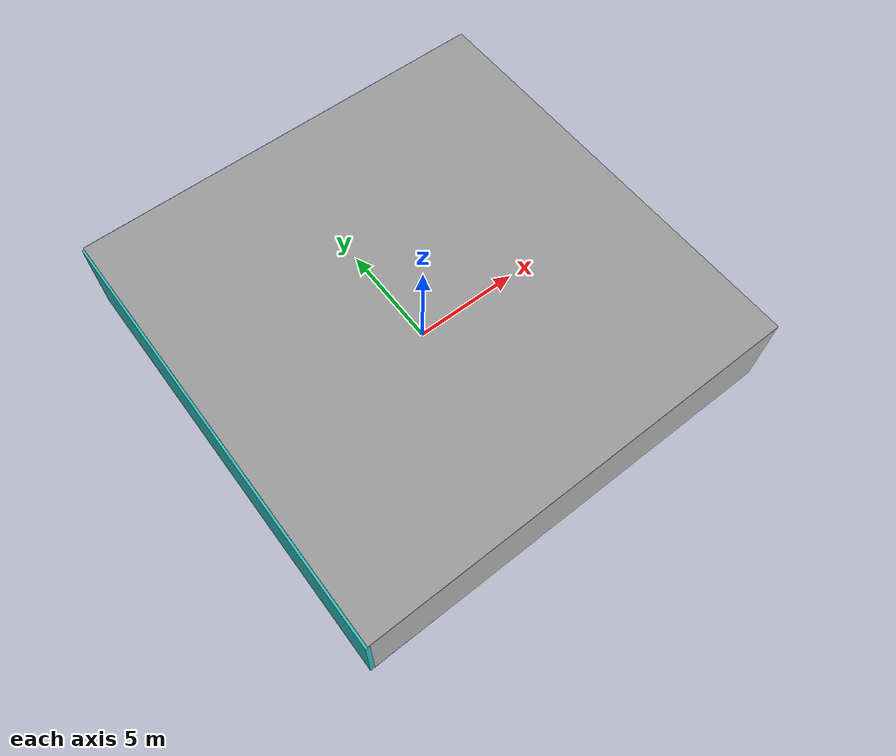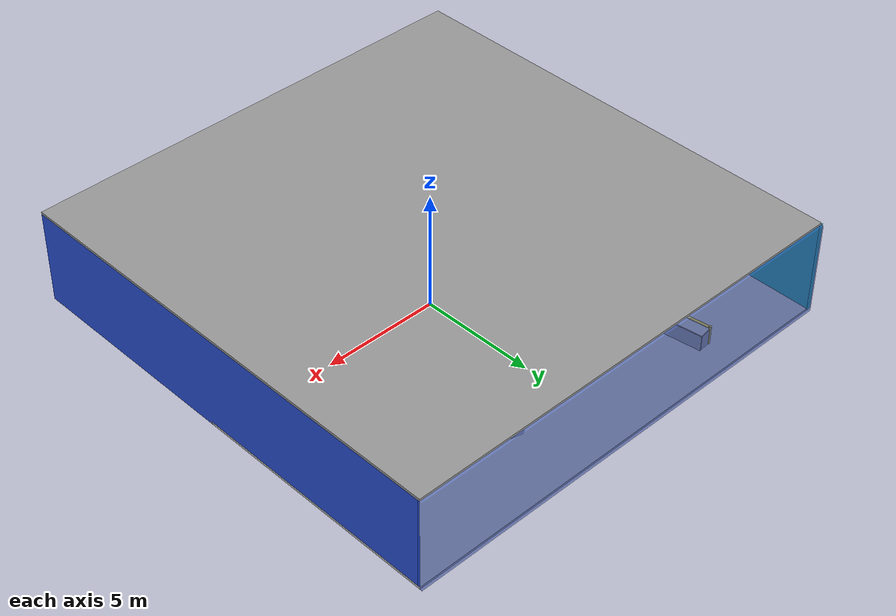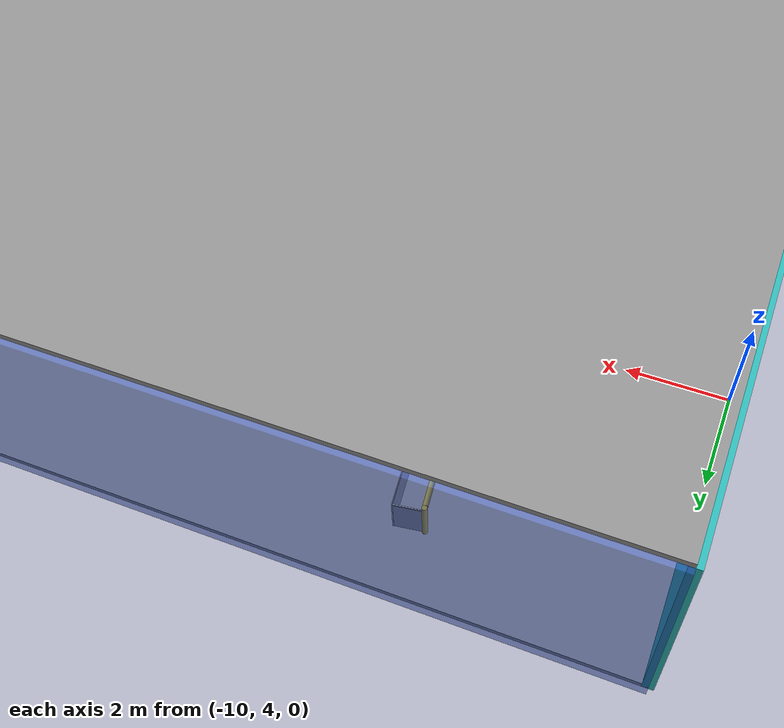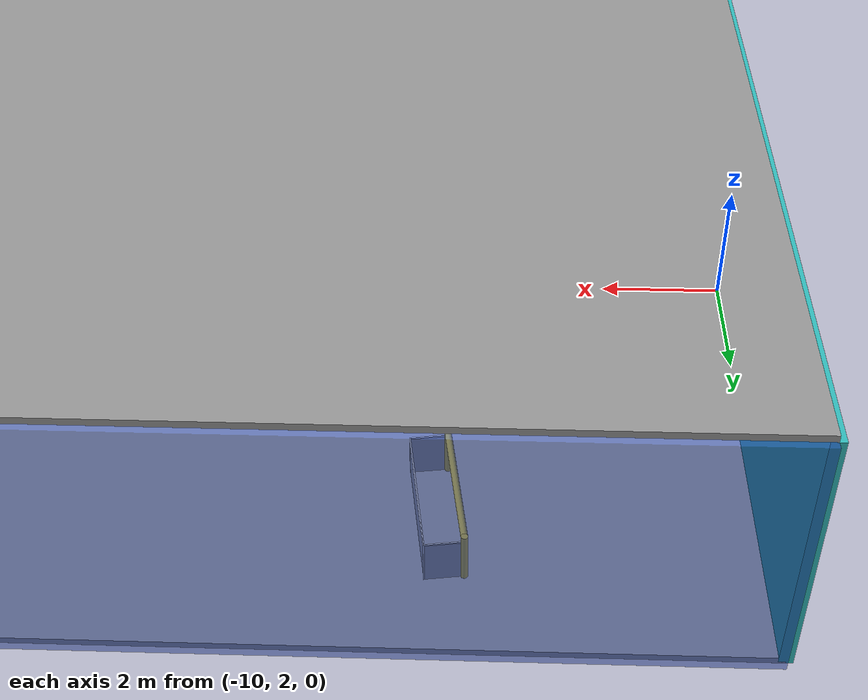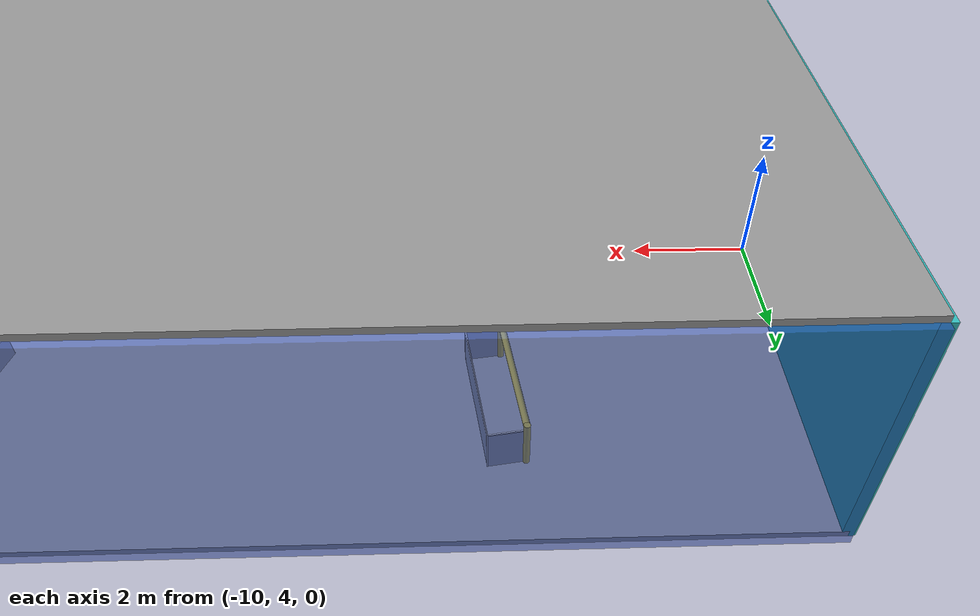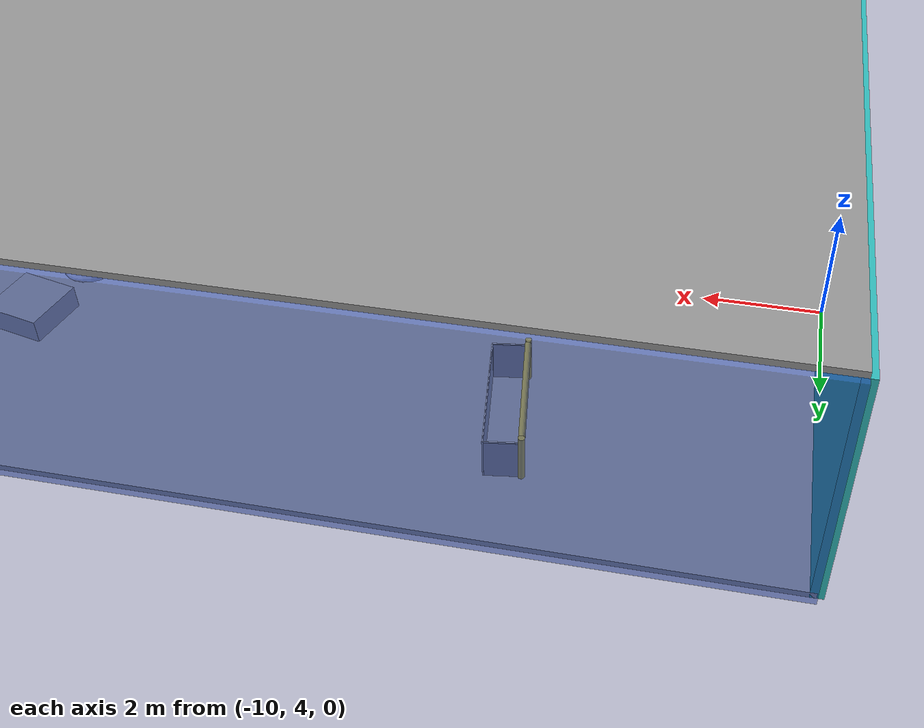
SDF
<sdf version="1.4">
 <world name="default">
  <physics type="ode">
   <max_step_size>0.001</max_step_size>
   <real_time_factor>1</real_time_factor>
   <real_time_update_rate>1000</real_time_update_rate>
   <gravity>0 0 -9.8</gravity>
  </physics>
  <scene><ambient>0.4 0.4 0.4 1</ambient><background>0.7 0.7 0.7 1</background><shadows>1</shadows></scene>
  <model name="Surrounding">
   <static>1</static>
   <link name="Ceiling">
    <collision name="Ceiling_Collision"><geometry><box><size>20 20 0.1</size></box></geometry></collision>
    <visual name="Ceiling_Visual">
     <geometry><box><size>20 20 0.1</size></box></geometry>
     <material>
      <script><uri>file://media/materials/scripts/gazebo.material</uri><name>Gazebo/Grey</name></script>
     </material>
    </visual>
    <pose>0 0 4.05 0 0 0</pose>
   </link>
   <link name="Wall_South">
    <collision name="Wall_South_Collision">
     <geometry><box><size>20 0 4</size></box></geometry>
     <pose>0 0 2 0 -0 0</pose>
    </collision>
    <visual name="Wall_South_Visual">
     <pose>0 0 2 0 -0 0</pose>
     <geometry><box><size>20 0 4</size></box></geometry>
     <material>
      <script><uri>file://media/materials/scripts/gazebo.material</uri><name>Gazebo/JointAnchor</name></script>
     </material>
    </visual>
    <velocity_decay><linear>0</linear><angular>0</angular></velocity_decay>
    <pose>0 -10 0 0 -0 0</pose>
   </link>
   <link name="Wall_East">
    <collision name="Wall_21_Collision">
     <geometry><box><size>20 0 4</size></box></geometry>
     <pose>0 0 2 0 -0 0</pose>
    </collision>
    <visual name="Wall_21_Visual">
     <pose>0 0 2 0 -0 0</pose>
     <geometry><box><size>20 0 4</size></box></geometry>
     <material>
      <script><uri>file://media/materials/scripts/gazebo.material</uri><name>Gazebo/BlueGlow</name></script>
     </material>
    </visual>
    <velocity_decay><linear>0</linear><angular>0</angular></velocity_decay>
    <pose>10 0 0 0 -0 1.5708</pose>
   </link>
   <link name="Wall_North">
    <collision name="Wall_22_Collision">
     <geometry><box><size>20 0.2 4</size></box></geometry>
     <pose>0 0 2 0 -0 0</pose>
    </collision>
    <visual name="Wall_22_Visual">
     <pose>0 0 2 0 -0 0</pose>
     <geometry><box><size>20 0.2 4</size></box></geometry>
     <material>
      <script><uri>file://media/materials/scripts/gazebo.material</uri><name>Gazebo/BlueTransparent</name></script>
     </material>
    </visual>
    <velocity_decay><linear>0</linear><angular>0</angular></velocity_decay>
    <pose>0 10 0 0 -0 0</pose>
   </link>
   <link name="Wall_West">
    <collision name="Wall_23_Collision">
     <geometry><box><size>20 0.2 4</size></box></geometry>
     <pose>0 0 2 0 -0 0</pose>
    </collision>
    <visual name="Wall_23_Visual">
     <pose>0 0 2 0 -0 0</pose>
     <geometry><box><size>20 0.2 4</size></box></geometry>
     <material>
      <script><uri>file://media/materials/scripts/gazebo.material</uri><name>Gazebo/TurquoiseGlow</name></script>
     </material>
    </visual>
    <velocity_decay><linear>0</linear><angular>0</angular></velocity_decay>
    <pose>-10 0 0 0 0 -1.5708</pose>
   </link>
   <link name="Ground_link">
    <collision name="collision">
     <pose>0 0 .05 0 -0 0</pose>
     <geometry><box><size>20 20 0.1</size></box></geometry>
    </collision>
    <visual name="visual">
     <pose>0 0 .05 0 -0 0</pose>
     <geometry><box><size>20 20 0.1</size></box></geometry>
     <material>
      <script><uri>file://media/materials/scripts/gazebo.material</uri><name>Gazebo/LightOn</name></script>
     </material>
    </visual>
   </link>
   <static>1</static>
  </model>
  <spherical_coordinates>
   <surface_model>EARTH_WGS84</surface_model>
   <latitude_deg>0</latitude_deg>
   <longitude_deg>0</longitude_deg>
   <elevation>0</elevation>
   <heading_deg>0</heading_deg>
  </spherical_coordinates>
  <light name="lightball_0" type="diffuse">
   <diffuse>0.8 0.8 0.8 1</diffuse>
   <specular>0.2 0.2 0.2 1</specular>
   <attenuation>
    <range>100</range>
    <constant>0.7</constant>
    <linear>0.01</linear>
    <quadratic>0.001</quadratic>
   </attenuation>
   <direction>-0.5 0.1 -0.9</direction>
   <pose>-4.37841495569 -2.2084837298 2.90234116353 0 0 0</pose>
  </light>
  <light name="lightball_1" type="diffuse">
   <diffuse>0.8 0.8 0.8 1</diffuse>
   <specular>0.2 0.2 0.2 1</specular>
   <attenuation>
    <range>100</range>
    <constant>0.7</constant>
    <linear>0.01</linear>
    <quadratic>0.001</quadratic>
   </attenuation>
   <direction>-0.5 0.1 -0.9</direction>
   <pose>2.8134085988 -0.138546254115 1.37051373223 0 0 0</pose>
  </light>
  <light name="lightball_2" type="diffuse">
   <diffuse>0.8 0.8 0.8 1</diffuse>
   <specular>0.2 0.2 0.2 1</specular>
   <attenuation>
    <range>100</range>
    <constant>0.7</constant>
    <linear>0.01</linear>
    <quadratic>0.001</quadratic>
   </attenuation>
   <direction>-0.5 0.1 -0.9</direction>
   <pose>0.16027631191 4.37631685519 0.68332792497 0 0 0</pose>
  </light>
  <light name="lightball_3" type="diffuse">
   <diffuse>0.8 0.8 0.8 1</diffuse>
   <specular>0.2 0.2 0.2 1</specular>
   <attenuation>
    <range>100</range>
    <constant>0.7</constant>
    <linear>0.01</linear>
    <quadratic>0.001</quadratic>
   </attenuation>
   <direction>-0.5 0.1 -0.9</direction>
   <pose>-5.05366310971 0.598179150548 2.87539992833 0 0 0</pose>
  </light>
  <light name="lightball_4" type="diffuse">
   <diffuse>0.8 0.8 0.8 1</diffuse>
   <specular>0.2 0.2 0.2 1</specular>
   <attenuation>
    <range>100</range>
    <constant>0.7</constant>
    <linear>0.01</linear>
    <quadratic>0.001</quadratic>
   </attenuation>
   <direction>-0.5 0.1 -0.9</direction>
   <pose>-6.12733841431 6.30184453821 1.97399526768 0 0 0</pose>
  </light>
  <light name="lightball_5" type="diffuse">
   <diffuse>0.8 0.8 0.8 1</diffuse>
   <specular>0.2 0.2 0.2 1</specular>
   <attenuation>
    <range>100</range>
    <constant>0.7</constant>
    <linear>0.01</linear>
    <quadratic>0.001</quadratic>
   </attenuation>
   <direction>-0.5 0.1 -0.9</direction>
   <pose>3.73430938468 6.8162633374 3.4812882943 0 0 0</pose>
  </light>
  <light name="lightball_6" type="diffuse">
   <diffuse>0.8 0.8 0.8 1</diffuse>
   <specular>0.2 0.2 0.2 1</specular>
   <attenuation>
    <range>100</range>
    <constant>0.7</constant>
    <linear>0.01</linear>
    <quadratic>0.001</quadratic>
   </attenuation>
   <direction>-0.5 0.1 -0.9</direction>
   <pose>1.41240355809 -1.55719964951 1.26577134417 0 0 0</pose>
  </light>
  <light name="lightball_7" type="diffuse">
   <diffuse>0.8 0.8 0.8 1</diffuse>
   <specular>0.2 0.2 0.2 1</specular>
   <attenuation>
    <range>100</range>
    <constant>0.7</constant>
    <linear>0.01</linear>
    <quadratic>0.001</quadratic>
   </attenuation>
   <direction>-0.5 0.1 -0.9</direction>
   <pose>0.112353662642 3.24405273775 3.42144047588 0 0 0</pose>
  </light>
  <light name="lightball_8" type="diffuse">
   <diffuse>0.8 0.8 0.8 1</diffuse>
   <specular>0.2 0.2 0.2 1</specular>
   <attenuation>
    <range>100</range>
    <constant>0.7</constant>
    <linear>0.01</linear>
    <quadratic>0.001</quadratic>
   </attenuation>
   <direction>-0.5 0.1 -0.9</direction>
   <pose>1.78493836829 4.53837798076 2.58009219122 0 0 0</pose>
  </light>
  <include><uri>model://table</uri><pose>-8.4729654859 -5.59202750017 0 0 0 0.223635875265</pose></include>
  <include><uri>model://table</uri><pose>-8.50082364924 -1.20788861012 0 0 0 1.00952154769</pose></include>
  <include>
   <uri>model://robocup_3Dsim_goal</uri>
   <pose>-5.60276780558 7.68550368346 0 0 0 0.14153147326</pose>
  </include>
  <include><uri>model://table</uri><pose>1.91600640443 -1.03018139038 0 0 0 2.88787649442</pose></include>
  <include><uri>model://table</uri><pose>2.49473634115 0.881832254828 0 0 0 2.13565713995</pose></include>
  <include>
   <uri>model://textured_shapes</uri>
   <pose>2.60257094917 5.30310246931 0 0 0 2.92565733622</pose>
  </include>
  <include><uri>model://cabinet</uri><pose>8.00534586903 -7.83016699394 0 0 0 2.31352316132</pose></include>
  <include>
   <uri>model://construction_cone</uri>
   <pose>7.86975805356 -5.0648309936 0 0 0 0.931716026371</pose>
  </include>
  <include><uri>model://cabinet</uri><pose>7.70400266707 5.55534842805 0 0 0 1.57807123743</pose></include>
 </world>
</sdf>

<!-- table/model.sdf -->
<sdf version="1.5">
  <model name="table">
    <static>true</static>
    <link name="link">
      <collision name="surface">
        <pose>0 0 1.0 0 0 0</pose>
        <geometry>
          <box>
            <size>1.5 0.8 0.03</size>
          </box>
        </geometry>
        <surface>
          <friction>
            <ode>
              <mu>0.6</mu>
              <mu2>0.6</mu2>
            </ode>
          </friction>
        </surface>
      </collision>
      <visual name="visual1">
        <pose>0 0 1.0 0 0 0</pose>
        <geometry>
          <box>
            <size>1.5 0.8 0.03</size>
          </box>
        </geometry>
        <material>
          <script>
            <uri>model://media/materials/scripts/gazebo.material</uri>
            <name>Gazebo/Wood</name>
          </script>
        </material>
      </visual>
      <collision name="front_left_leg">
        <pose>0.68 0.38 0.5 0 0 0</pose>
        <geometry>
          <cylinder>
            <radius>0.02</radius>
            <length>1.0</length>
          </cylinder>
        </geometry>
      </collision>
      <visual name="front_left_leg">
        <pose>0.68 0.38 0.5 0 0 0</pose>
        <geometry>
          <cylinder>
            <radius>0.02</radius>
            <length>1.0</length>
          </cylinder>
        </geometry>
        <material>
          <script>
            <uri>model://media/materials/scripts/gazebo.material</uri>
            <name>Gazebo/Grey</name>
          </script>
        </material>
      </visual>
      <collision name="front_right_leg">
        <pose>0.68 -0.38 0.5 0 0 0</pose>
        <geometry>
          <cylinder>
            <radius>0.02</radius>
            <length>1.0</length>
          </cylinder>
        </geometry>
      </collision>
      <visual name="front_right_leg">
        <pose>0.68 -0.38 0.5 0 0 0</pose>
        <geometry>
          <cylinder>
            <radius>0.02</radius>
            <length>1.0</length>
          </cylinder>
        </geometry>
        <material>
          <script>
            <uri>model://media/materials/scripts/gazebo.material</uri>
            <name>Gazebo/Grey</name>
          </script>
        </material>
      </visual>
      <collision name="back_right_leg">
        <pose>-0.68 -0.38 0.5 0 0 0</pose>
        <geometry>
          <cylinder>
            <radius>0.02</radius>
            <length>1.0</length>
          </cylinder>
        </geometry>
      </collision>
      <visual name="back_right_leg">
        <pose>-0.68 -0.38 0.5 0 0 0</pose>
        <geometry>
          <cylinder>
            <radius>0.02</radius>
            <length>1.0</length>
          </cylinder>
        </geometry>
        <material>
          <script>
            <uri>model://media/materials/scripts/gazebo.material</uri>
            <name>Gazebo/Grey</name>
          </script>
        </material>
      </visual>
      <collision name="back_left_leg">
        <pose>-0.68 0.38 0.5 0 0 0</pose>
        <geometry>
          <cylinder>
            <radius>0.02</radius>
            <length>1.0</length>
          </cylinder>
        </geometry>
      </collision>
      <visual name="back_left_leg">
        <pose>-0.68 0.38 0.5 0 0 0</pose>
        <geometry>
          <cylinder>
            <radius>0.02</radius>
            <length>1.0</length>
          </cylinder>
        </geometry>
        <material>
          <script>
            <uri>model://media/materials/scripts/gazebo.material</uri>
            <name>Gazebo/Grey</name>
          </script>
        </material>
      </visual>
    </link>
  </model>
</sdf>

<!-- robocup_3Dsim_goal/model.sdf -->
<sdf version="1.5">
  <model name="robocup_3d_goal">
    <static>true</static>
    <link name="left_post">
      <pose>0 1.05 0.45 0 0 0</pose>
      <collision name="collision">
        <geometry>
          <cylinder>
            <radius>0.05</radius>
            <length>0.9</length>
          </cylinder>
        </geometry>
      </collision>
      <visual name="visual">
        <geometry>
          <cylinder>
            <radius>0.05</radius>
            <length>0.9</length>
          </cylinder>
        </geometry>
        <material>
          <script>
            <uri>file://media/materials/scripts/gazebo.material</uri>
            <name>Gazebo/ZincYellow</name>
          </script>
        </material>
      </visual>
    </link>
    <link name="left_support_horiz_lower">
      <pose>0.30 1.05 0.01 0 0 0</pose>
      <collision name="collision">
        <geometry>
          <box>
            <size>0.50 0.02 0.02</size>
          </box>
        </geometry>
      </collision>
      <visual name="visual">
        <geometry>
          <box>
            <size>0.50 0.02 0.02</size>
          </box>
        </geometry>
        <material>
          <script>
            <uri>file://media/materials/scripts/gazebo.material</uri>
            <name>Gazebo/White</name>
          </script>
        </material>
      </visual>
    </link>
    <link name="left_support_horiz_upper">
      <pose>0.30 1.05 0.79 0 0 0</pose>
      <collision name="collision">
        <geometry>
          <box>
            <size>0.50 0.02 0.02</size>
          </box>
        </geometry>
      </collision>
      <visual name="visual">
        <geometry>
          <box>
            <size>0.50 0.02 0.02</size>
          </box>
        </geometry>
        <material>
          <script>
            <uri>file://media/materials/scripts/gazebo.material</uri>
            <name>Gazebo/White</name>
          </script>
        </material>
      </visual>
    </link>
    <link name="left_support_vertical">
      <pose>0.56 1.05 0.4 0 1.5708 0</pose>
      <collision name="collision">
        <geometry>
          <box>
            <size>0.80 0.02 0.02</size>
          </box>
        </geometry>
      </collision>
      <visual name="visual">
        <geometry>
          <box>
            <size>0.80 0.02 0.02</size>
          </box>
        </geometry>
        <material>
          <script>
            <uri>file://media/materials/scripts/gazebo.material</uri>
            <name>Gazebo/White</name>
          </script>
        </material>
      </visual>
    </link>
    <link name="right_support_horiz_lower">
      <pose>0.30 -1.05 0.01 0 0 0</pose>
      <collision name="collision">
        <geometry>
          <box>
            <size>0.50 0.02 0.02</size>
          </box>
        </geometry>
      </collision>
      <visual name="visual">
        <geometry>
          <box>
            <size>0.50 0.02 0.02</size>
          </box>
        </geometry>
        <material>
          <script>
            <uri>file://media/materials/scripts/gazebo.material</uri>
            <name>Gazebo/White</name>
          </script>
        </material>
      </visual>
    </link>
    <link name="right_support_horiz_upper">
      <pose>0.30 -1.05 0.79 0 0 0</pose>
      <collision name="collision">
        <geometry>
          <box>
            <size>0.50 0.02 0.02</size>
          </box>
        </geometry>
      </collision>
      <visual name="visual">
        <geometry>
          <box>
            <size>0.50 0.02 0.02</size>
          </box>
        </geometry>
        <material>
          <script>
            <uri>file://media/materials/scripts/gazebo.material</uri>
            <name>Gazebo/White</name>
          </script>
        </material>
      </visual>
    </link>
    <link name="right_support_vertical">
      <pose>0.56 -1.05 0.4 0 1.5708 0</pose>
      <collision name="collision">
        <geometry>
          <box>
            <size>0.80 0.02 0.02</size>
          </box>
        </geometry>
      </collision>
      <visual name="visual">
        <geometry>
          <box>
            <size>0.80 0.02 0.02</size>
          </box>
        </geometry>
        <material>
          <script>
            <uri>file://media/materials/scripts/gazebo.material</uri>
            <name>Gazebo/White</name>
          </script>
        </material>
      </visual>
    </link>
    <link name="center_support_horiz_lower">
      <pose>0.56 0 0.01 0 1.5708 0</pose>
      <collision name="collision">
        <geometry>
          <box>
            <size>0.02 2.08 0.02</size>
          </box>
        </geometry>
      </collision>
      <visual name="visual">
        <geometry>
          <box>
            <size>0.02 2.08 0.02</size>
          </box>
        </geometry>
        <material>
          <script>
            <uri>file://media/materials/scripts/gazebo.material</uri>
            <name>Gazebo/White</name>
          </script>
        </material>
      </visual>
    </link>
    <link name="center_support_horiz_upper">
      <pose>0.56 0 0.79 0 1.5708 0</pose>
      <collision name="collision">
        <geometry>
          <box>
            <size>0.02 2.08 0.02</size>
          </box>
        </geometry>
      </collision>
      <visual name="visual">
        <geometry>
          <box>
            <size>0.02 2.08 0.02</size>
          </box>
        </geometry>
        <material>
          <script>
            <uri>file://media/materials/scripts/gazebo.material</uri>
            <name>Gazebo/White</name>
          </script>
        </material>
      </visual>
    </link>
    <link name="right_post">
      <pose>0 -1.05 0.45 0 0 0</pose>
      <collision name="collision">
        <geometry>
          <cylinder>
            <radius>0.05</radius>
            <length>0.9</length>
          </cylinder>
        </geometry>
      </collision>
      <visual name="visual">
        <geometry>
          <cylinder>
            <radius>0.05</radius>
            <length>0.9</length>
          </cylinder>
        </geometry>
        <material>
          <script>
            <uri>file://media/materials/scripts/gazebo.material</uri>
            <name>Gazebo/ZincYellow</name>
          </script>
        </material>
      </visual>
    </link>
    <link name="crossbar">
      <pose>0 0 0.85 1.57 1.57 0</pose>
      <collision name="collision">
        <geometry>
          <cylinder>
            <radius>0.05</radius>
            <length>2.0</length>
          </cylinder>
        </geometry>
      </collision>
      <visual name="visual">
        <geometry>
          <cylinder>
            <radius>0.05</radius>
            <length>2.0</length>
          </cylinder>
        </geometry>
        <material>
          <script>
            <uri>file://media/materials/scripts/gazebo.material</uri>
            <name>Gazebo/ZincYellow</name>
          </script>
        </material>
      </visual>
    </link>
    <link name="center_net">
      <pose>0.56 0 0.40 0 0 0</pose>
      <collision name="collision">
        <geometry>
          <box>
            <size>0.01 2.1 0.80</size>
          </box>
        </geometry>
      </collision>
      <visual name="visual">
        <geometry>
          <box>
            <size>0.01 2.1 0.80</size>
          </box>
        </geometry>
        <material>
          <script>
            <uri>model://../model_source/models/robocup09_spl_field/materials/scripts/</uri>
            <uri>model://../model_source/models/robocup09_spl_field/materials/textures/</uri>
            <name>RoboCup/Net</name>
          </script>
        </material>
      </visual>
    </link>
    <link name="left_net">
      <pose>0.30 1.05 0.40 0 0 0</pose>
      <collision name="collision">
        <geometry>
          <box>
            <size>0.50 0.01 0.76</size>
          </box>
        </geometry>
      </collision>
      <visual name="visual">
        <geometry>
          <box>
            <size>0.50 0.01 0.76</size>
          </box>
        </geometry>
        <material>
          <script>
            <uri>model://../model_source/models/robocup09_spl_field/materials/scripts/</uri>
            <uri>model://../model_source/models/robocup09_spl_field/materials/textures/</uri>
            <name>RoboCup/Net</name>
          </script>
        </material>
      </visual>
    </link>
    <link name="right_net">
      <pose>0.30 -1.05 0.40 0 0 0</pose>
      <collision name="collision">
        <geometry>
          <box>
            <size>0.50 0.01 0.76</size>
          </box>
        </geometry>
      </collision>
      <visual name="visual">
        <geometry>
          <box>
            <size>0.50 0.01 0.76</size>
          </box>
        </geometry>
        <material>
          <script>
            <uri>model://../model_source/models/robocup09_spl_field/materials/scripts/</uri>
            <uri>model://../model_source/models/robocup09_spl_field/materials/textures/</uri>
            <name>RoboCup/Net</name>
          </script>
        </material>
      </visual>
    </link>
  </model>
</sdf>

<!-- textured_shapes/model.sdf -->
<sdf version="1.6">
  <model name="textured_shapes">
    <pose>0 0 0.5 0 0 0</pose>
    <link name="box">
      <pose>0 -1.5 0 0 0 0</pose>
      <collision name="collision">
        <geometry>
          <box>
            <size>1 1 1</size>
          </box>
        </geometry>
      </collision>
      <visual name="visual">
        <geometry>
          <box>
            <size>1 1 1</size>
          </box>
        </geometry>
        <material>
          <script>
            <uri>model://../model_source/models/textured_shapes/materials/scripts</uri>
            <uri>model://../model_source/models/textured_shapes/materials/textures</uri>
            <name>TexturedShape/Squares</name>
          </script>
        </material>
      </visual>
    </link>
    <link name="sphere">
      <collision name="collision">
        <geometry>
          <sphere>
            <radius>0.5</radius>
          </sphere>
        </geometry>
      </collision>
      <visual name="visual">
        <geometry>
          <sphere>
            <radius>0.5</radius>
          </sphere>
        </geometry>
        <material>
          <script>
            <uri>model://../model_source/models/textured_shapes/materials/scripts</uri>
            <uri>model://../model_source/models/textured_shapes/materials/textures</uri>
            <name>TexturedShape/Squares</name>
          </script>
        </material>
      </visual>
    </link>
    <link name="cylinder">
      <pose>0 1.5 0 0 0 0</pose>
      <collision name="collision">
        <geometry>
          <cylinder>
            <radius>0.5</radius>
            <length>1</length>
          </cylinder>
        </geometry>
      </collision>
      <visual name="visual">
        <geometry>
          <cylinder>
            <radius>0.5</radius>
            <length>1</length>
          </cylinder>
        </geometry>
        <material>
          <script>
            <uri>model://../model_source/models/textured_shapes/materials/scripts</uri>
            <uri>model://../model_source/models/textured_shapes/materials/textures</uri>
            <name>TexturedShape/Squares</name>
          </script>
        </material>
      </visual>
    </link>
  </model>
</sdf>

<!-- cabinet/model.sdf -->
<sdf version="1.5">
  <model name="cabinet">
    <static>true</static>
    <link name="cabinet_bottom_plate">
      <inertial>
        <pose>0 0 -1 0 0 0</pose>
        <inertia>
          <ixx>2.050000</ixx>
          <ixy>0</ixy>
          <ixz>0</ixz>
          <iyy>2.050000</iyy>
          <iyz>0</iyz>
          <izz>2.050000</izz>
        </inertia>
        <mass>25.000000</mass>
      </inertial>
      <collision name="cabinet_bottom_plate_geom">
        <pose>0 0 0.010000 0 0 0</pose>
        <geometry>
          <box>
            <size>0.450000 0.450000 0.020000</size>
          </box>
        </geometry>
      </collision>
      <visual name="cabinet_bottom_plate_geom_visual">
        <pose>0 0 0.010000 0 0 0</pose>
        <geometry>
          <box>
            <size>0.450000 0.450000 0.020000</size>
          </box>
        </geometry>
        <material>
          <script>
            <uri>model://media/materials/scripts/gazebo.material</uri>
            <name>Gazebo/Wood</name>
          </script>
        </material>
      </visual>
      <collision name="cabinet_bottom_plate_geom_cabinet_back_plate">
        <pose>0.235000 0 0.510000 0 0 0</pose>
        <geometry>
          <box>
            <size>0.020000 0.450000 1.020000</size>
          </box>
        </geometry>
      </collision>
      <visual name="cabinet_bottom_plate_geom_cabinet_back_plate_visual">
        <pose>0.235000 0 0.510000 0 0 0</pose>
        <geometry>
          <box>
            <size>0.020000 0.450000 1.020000</size>
          </box>
        </geometry>
        <material>
          <script>
            <uri>model://media/materials/scripts/gazebo.material</uri>
            <name>Gazebo/Wood</name>
          </script>
        </material>
      </visual>
      <collision name="cabinet_bottom_plate_geom_cabinet_left_plate">
        <pose>0 0.235000 0.510000 0 0 0</pose>
        <geometry>
          <box>
            <size>0.450000 0.020000 1.020000</size>
          </box>
        </geometry>
      </collision>
      <visual name="cabinet_bottom_plate_geom_cabinet_left_plate_visual">
        <pose>0 0.235000 0.510000 0 0 0</pose>
        <geometry>
          <box>
            <size>0.450000 0.020000 1.020000</size>
          </box>
        </geometry>
        <material>
          <script>
            <uri>model://media/materials/scripts/gazebo.material</uri>
            <name>Gazebo/Wood</name>
          </script>
        </material>
      </visual>
      <collision name="cabinet_bottom_plate_geom_cabinet_middle_plate">
        <pose>0 0 0.510000 0 0 0</pose>
        <geometry>
          <box>
            <size>0.450000 0.450000 0.020000</size>
          </box>
        </geometry>
      </collision>
      <visual name="cabinet_bottom_plate_geom_cabinet_middle_plate_visual">
        <pose>0 0 0.510000 0 0 0</pose>
        <geometry>
          <box>
            <size>0.450000 0.450000 0.020000</size>
          </box>
        </geometry>
        <material>
          <script>
            <uri>model://media/materials/scripts/gazebo.material</uri>
            <name>Gazebo/Wood</name>
          </script>
        </material>
      </visual>
      <collision name="cabinet_bottom_plate_geom_cabinet_right_plate">
        <pose>0 -0.235000 0.510000 0 0 0</pose>
        <geometry>
          <box>
            <size>0.450000 0.020000 1.020000</size>
          </box>
        </geometry>
      </collision>
      <visual name="cabinet_bottom_plate_geom_cabinet_right_plate_visual">
        <pose>0 -0.235000 0.510000 0 0 0</pose>
        <geometry>
          <box>
            <size>0.450000 0.020000 1.020000</size>
          </box>
        </geometry>
        <material>
          <script>
            <uri>model://media/materials/scripts/gazebo.material</uri>
            <name>Gazebo/Wood</name>
          </script>
        </material>
      </visual>
      <collision name="cabinet_bottom_plate_geom_cabinet_top_plate">
        <pose>0 0 1.010000 0 0 0</pose>
        <geometry>
          <box>
            <size>0.450000 0.450000 0.020000</size>
          </box>
        </geometry>
      </collision>
      <visual name="cabinet_bottom_plate_geom_cabinet_top_plate_visual">
        <pose>0 0 1.010000 0 0 0</pose>
        <geometry>
          <box>
            <size>0.450000 0.450000 0.020000</size>
          </box>
        </geometry>
        <material>
          <script>
            <uri>model://media/materials/scripts/gazebo.material</uri>
            <name>Gazebo/Wood</name>
          </script>
        </material>
      </visual>
    </link>
  </model>
</sdf>

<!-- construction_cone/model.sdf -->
<sdf version="1.5">
  <model name="Construction Cone">
    <link name="link">
      <collision name="collision">
        <geometry>
          <mesh>
            <scale>10 10 10</scale>
            <uri>file://isr-testbed/construction_cone/meshes/construction_cone.dae</uri>
          </mesh>
        </geometry>
      </collision>
      <visual name="visual">
        <geometry>
          <mesh>
            <scale>10 10 10</scale>
            <uri>file://isr-testbed/construction_cone/meshes/construction_cone.dae</uri>
          </mesh>
        </geometry>
      </visual>
    </link>
  </model>
</sdf>
